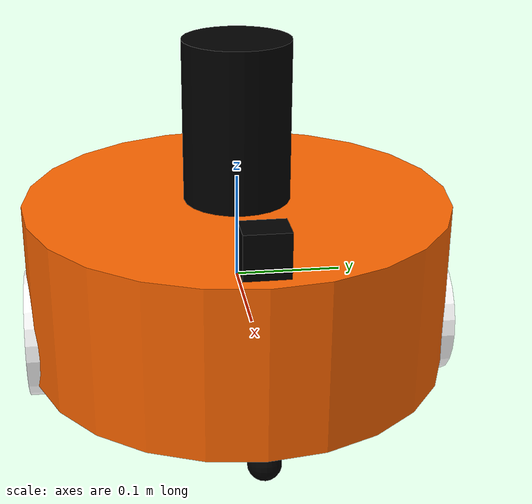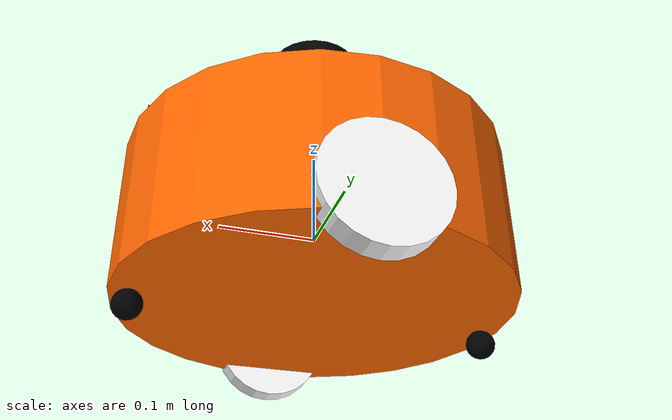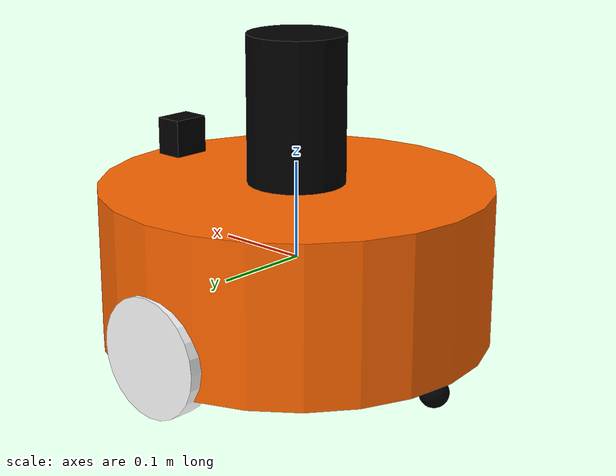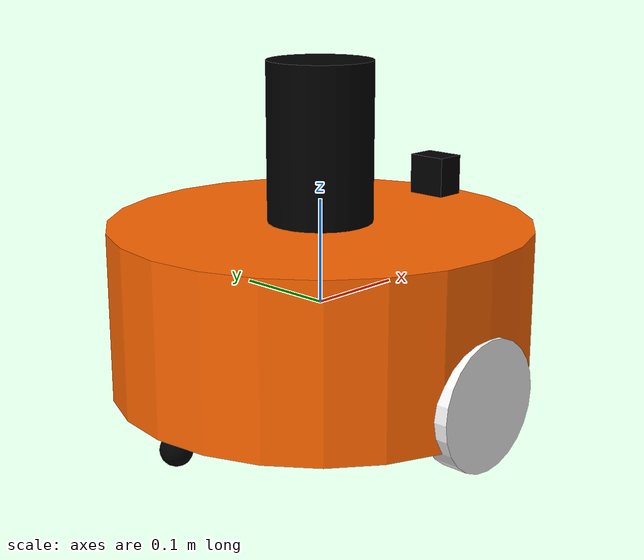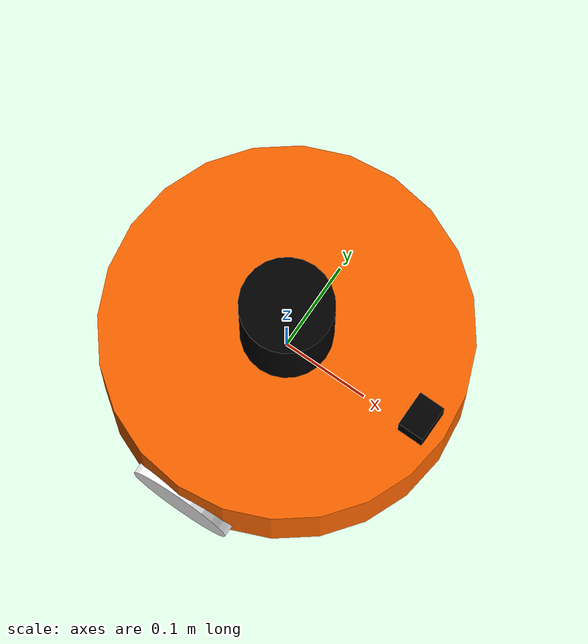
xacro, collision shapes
<?xml version="1.0"?>
<robot name="saibot" xmlns:xacro="http://www.ros.org/wiki/xacro">

    <xacro:property name="M_PI" value="3.14" />

    <!-- 底座的半径和高度 -->
    <xacro:property name="base_link_mass" value="20" />
    <xacro:property name="base_link_radius" value="0.20" />
    <xacro:property name="base_link_length" value="0.16" />

    <!-- 轮子的半径、高度、z轴、y轴 -->
    <xacro:property name="wheel_mass" value="20" />
    <xacro:property name="wheel_radius" value="0.06" />
    <xacro:property name="wheel_length" value="0.025" />
    <xacro:property name="wheel_z" value="-0.05" />
    <xacro:property name="wheel_y" value="0.19" />

    <!-- 支撑轮的半径、x轴 -->
    <xacro:property name="caster_mass" value="0.1" />
    <xacro:property name="caster_radius" value="0.015" />
    <xacro:property name="caster_x" value="0.18" />

    <!-- 摄像头的的长、宽、高、x轴 -->
    <xacro:property name="camera_mass" value="0.1" />
    <xacro:property name="camera_x" value="0.17" />
    <xacro:property name="camera_length" value="0.03" />
    <xacro:property name="camera_width" value="0.04" />
    <xacro:property name="camera_high" value="0.04" />

    <!-- 激光雷达头的的半径和高度 -->
    <xacro:property name="laser_mass" value="0.1" />
    <xacro:property name="laser_radius" value="0.05" />
    <xacro:property name="laser_length" value="0.15" />

    <!-- 球形的惯性矩阵 -->
    <xacro:macro name="sphere_inertial_matrix" params="m r">
        <inertial>
            <mass value="${m}"/>
            <inertia ixx="${2 * m * r * r / 5}" ixy="0.0" ixz="0.0" iyy="${2 * m * r * r / 5}" iyz="0.0" izz="${2 * m * r * r / 5}"/>
        </inertial>
    </xacro:macro>
    <!-- 圆柱的惯性矩阵 -->
    <xacro:macro name="cylinder_inertial_matrix" params="m r h">
        <inertial>
            <mass value="${m}"/>
            <inertia ixx="${m * (3 * r * r + h * h) / 12}" ixy="0.0" ixz="0.0" iyy="${m * (3 * r * r + h * h) / 12}" iyz="0.0" izz="${m * r * r / 2}"/>
        </inertial>
    </xacro:macro>
    <!-- 立方体的惯性矩阵 -->
    <xacro:macro name="box_inertial_matrix" params="m">
        <inertial>
            <mass value="${m}"/>
            <inertia ixx="${m}" ixy="0.0" ixz="0.0" iyy="${m}" iyz="0.0" izz="${m}"/>
        </inertial>
    </xacro:macro>

    <material name="yellow">
        <color rgba="1.0 0.4 0.0 1.0"/>
    </material>
    <material name="white">
        <color rgba="1.0 1.0 1.0 1.0"/>
    </material>
    <material name="black">
        <color rgba="0.0 0.0 0.0 1.0"/>
    </material>

    <link name="base_link">
        <visual>
            <!-- Set the position of the link and the rotation parameters of each axis -->
            <origin xyz="0.0 0.0 0.0" rpy="0.0 0.0 0.0"/>
            <!-- Set the shape parameters of the link -->
            <geometry>
                <cylinder radius="${base_link_radius}" length="${base_link_length}"/>
            </geometry>
            <!-- Set the color parameters of the link -->
            <material name="yellow" />
        </visual>
        <collision>
            <!-- Set the position of the collision and the rotation parameters of each axis -->
            <origin xyz="0.0 0.0 0.0" rpy="0.0 0.0 0.0"/>
            <!-- Set the shape parameters of the collision -->
            <geometry>
                <cylinder radius="${base_link_radius}" length="${base_link_length}"/>
            </geometry>
        </collision>
        <cylinder_inertial_matrix m="${base_link_mass}" r="${base_link_radius}" h="${base_link_length}" />
    </link>
    <!-- add gazebo material -->
    <gazebo reference="base_link">
        <material>Gazebo/Orange</material>
    </gazebo>

    <!-- Create a joint of type that rotates infinitely around a single axis -->
    <joint name="left_wheel_joint" type="continuous">
        <origin xyz="0.0 ${wheel_y} ${wheel_z}" rpy="0.0 0.0 0.0"/>
        <parent link="base_link"/>
        <child link="left_wheel_link"/>
        <!-- Set to rotate around the y axis -->
        <axis xyz="0.0 1.0 0.0"/>
    </joint>
    <link name="left_wheel_link">
        <visual>
            <origin xyz="0.0 0.0 0.0" rpy="${M_PI / 2} 0.0 0.0"/>
            <geometry>
                <cylinder radius="${wheel_radius}" length="${wheel_length}"/>
            </geometry>
            <material name="white" />
        </visual>
        <collision>
            <origin xyz="0.0 0.0 0.0" rpy="${M_PI / 2} 0.0 0.0"/>
            <geometry>
                <cylinder radius="${wheel_radius}" length="${wheel_length}"/>
            </geometry>
        </collision>
        <cylinder_inertial_matrix m="${wheel_mass}" r="${wheel_radius}" h="${wheel_length}" />
    </link>
    <gazebo reference="left_wheel_link">
        <material>Gazebo/White</material>
    </gazebo>
    <!-- add gazebo controller -->
    <transmission name="left_wheel_joint_tran">
        <type>transmission_interface/SimpleTransmission</type>
        <!-- Link join the join and controller -->
        <joint name="left_wheel_joint">
            <!-- Set Join controller interface -->
            <hardwareInterface>hardware_interface/VelocityJointInterface</hardwareInterface>
        </joint>
        <!-- Set join to motor -->
        <actuator name="left_wheel_joint_motor">
            <hardwareInterface>hardware_interface/VelocityJointInterface</hardwareInterface>
            <!-- Set the reduction ratio -->
            <mechanicalReduction>1</mechanicalReduction>
        </actuator>
    </transmission>

    <joint name="right_wheel_joint" type="continuous">
        <origin xyz="0.0 -${wheel_y} ${wheel_z}" rpy="0.0 0.0 0.0"/>
        <parent link="base_link"/>
        <child link="right_wheel_link"/>
        <axis xyz="0.0 1.0 0.0"/>
    </joint>
    <link name="right_wheel_link">
        <visual>
            <origin xyz="0.0 0.0 0.0" rpy="${M_PI / 2} 0.0 0.0"/>
            <geometry>
                <cylinder radius="${wheel_radius}" length="${wheel_length}"/>
            </geometry>
            <material name="white" />
        </visual>
        <collision>
            <origin xyz="0.0 0.0 0.0" rpy="${M_PI / 2} 0.0 0.0"/>
            <geometry>
                <cylinder radius="${wheel_radius}" length="${wheel_length}"/>
            </geometry>
        </collision>
        <cylinder_inertial_matrix m="${wheel_mass}" r="${wheel_radius}" h="${wheel_length}" />
    </link>
    <gazebo reference="right_wheel_link">
        <material>Gazebo/White</material>
    </gazebo>
    <transmission name="right_wheel_joint_tran">
        <type>transmission_interface/SimpleTransmission</type>
        <joint name="right_wheel_joint">
            <hardwareInterface>hardware_interface/VelocityJointInterface</hardwareInterface>
        </joint>
        <actuator name="right_wheel_joint_motor">
            <hardwareInterface>hardware_interface/VelocityJointInterface</hardwareInterface>
            <mechanicalReduction>1</mechanicalReduction>
        </actuator>
    </transmission>

    <joint name="front_caster_joint" type="continuous">
        <origin xyz="${caster_x} 0.0 -${base_link_length / 2 + caster_radius}" rpy="0.0 0.0 0.0"/>
        <parent link="base_link"/>
        <child link="front_caster_link"/>
        <axis xyz="0.0 1.0 0.0"/>
    </joint>
    <link name="front_caster_link">
        <visual>
            <origin xyz="0.0 0.0 0.0" rpy="${M_PI / 2} 0.0 0.0"/>
            <geometry>
                <sphere radius="${caster_radius}"/>
            </geometry>
            <material name="black" />
        </visual>
        <collision>
            <origin xyz="0.0 0.0 0.0" rpy="${M_PI / 2} 0.0 0.0"/>
            <geometry>
                <sphere radius="${caster_radius}"/>
            </geometry>
        </collision>
        <sphere_inertial_matrix m="${caster_mass}" r="${caster_radius}" />
    </link>
    <gazebo reference="front_caster_link">
        <material>Gazebo/Black</material>
    </gazebo>

    <joint name="back_caster_joint" type="continuous">
        <origin xyz="-${caster_x} 0.0 -${base_link_length / 2 + caster_radius}" rpy="0.0 0.0 0.0"/>
        <parent link="base_link"/>
        <child link="back_caster_link"/>
        <axis xyz="0.0 1.0 0.0"/>
    </joint>
    <link name="back_caster_link">
        <visual>
            <origin xyz="0.0 0.0 0.0" rpy="${M_PI / 2} 0.0 0.0"/>
            <geometry>
                <sphere radius="${caster_radius}"/>
            </geometry>
            <material name="black" />
        </visual>
        <collision>
            <origin xyz="0.0 0.0 0.0" rpy="${M_PI / 2} 0.0 0.0"/>
            <geometry>
                <sphere radius="${caster_radius}"/>
            </geometry>
        </collision>
        <sphere_inertial_matrix m="${caster_mass}" r="${caster_radius}" />
    </link>
    <gazebo reference="back_caster_link">
        <material>Gazebo/Black</material>
    </gazebo>

    <!-- Create a joint of type fixed joint -->
    <joint name="camera_joint" type="fixed">
        <origin xyz="${camera_x} 0.0 ${base_link_length / 2 + camera_high / 2}" rpy="0.0 0.0 0.0"/>
        <parent link="base_link"/>
        <child link="camera_link"/>
    </joint>
    <link name="camera_link">
        <visual>
            <origin xyz="0.0 0.0 0.0" rpy="0.0 0.0 0.0"/>
            <geometry>
                <box size="${camera_length} ${camera_width} ${camera_high}"/>
            </geometry>
            <material name="black" />
        </visual>
        <collision>
            <origin xyz="0.0 0.0 0.0" rpy="0.0 0.0 0.0"/>
            <geometry>
                <box size="${camera_length} ${camera_width} ${camera_high}"/>
            </geometry>
        </collision>
        <box_inertial_matrix m="${camera_mass}" />
    </link>
    <gazebo reference="camera_link">
        <material>Gazebo/Black</material>
    </gazebo>

    <joint name="laser_joint" type="fixed">
        <origin xyz="0.0 0.0 ${base_link_length / 2 + laser_length / 2}" rpy="0.0 0.0 0.0"/>
        <parent link="base_link"/>
        <child link="laser_link"/>
    </joint>
    <link name="laser_link">
        <visual>
            <origin xyz="0.0 0.0 0.0" rpy="0.0 0.0 0.0"/>
            <geometry>
                <cylinder radius="${laser_radius}" length="${laser_length}"/>
            </geometry>
            <material name="black" />
        </visual>
        <collision>
            <origin xyz="0.0 0.0 0.0" rpy="0.0 0.0 0.0"/>
            <geometry>
                <cylinder radius="${laser_radius}" length="${laser_length}"/>
            </geometry>
        </collision>
        <cylinder_inertial_matrix m="${laser_mass}" r="${laser_radius}" h="${laser_length}" />
    </link>
    <gazebo reference="laser_link">
        <material>Gazebo/Black</material>
    </gazebo>

    <joint name="kinect_joint" type="fixed">
        <origin xyz="-${camera_x} 0.0 0.115" rpy="0.0 0.0 -${M_PI}"/>
        <parent link="base_link"/>
        <child link="kinect_link"/>
    </joint>
    <link name="kinect_link">
        <visual>
            <origin xyz="0.0 0.0 0.0" rpy="0.0 0.0 ${M_PI / 2}"/>
            <geometry>
                <!-- Load texture description file -->
                <mesh filename="package://lesson7_urdf/meshes/kinect.dae" />
            </geometry>
        </visual>
    </link>

    <!-- add Gazebo controller -->
    <gazebo>
        <plugin name="differential_drive_controller"
                filename="libgazebo_ros_diff_drive.so">
            <rosDebugLevel>Debug</rosDebugLevel>
            <publishWheelTF>true</publishWheelTF>
            <robotNamespace>/</robotNamespace>
            <publishTf>1</publishTf>
            <publishWheelJointState>true</publishWheelJointState>
            <alwaysOn>true</alwaysOn>
            <updateRate>100.0</updateRate>
            <legacyMode>true</legacyMode>
            <leftJoint>left_wheel_joint</leftJoint>
            <rightJoint>right_wheel_joint</rightJoint>
            <wheelSeparation>${2 * wheel_y}</wheelSeparation>
            <wheelDiameter>${2 * wheel_radius}</wheelDiameter>
            <broadcastTF>1</broadcastTF>
            <wheelTorque>30</wheelTorque>
            <wheelAcceleration>1.8</wheelAcceleration>
            <commandTopic>cmd_vel</commandTopic>
            <odometryFrame>odom</odometryFrame>
            <odometryTopic>odom</odometryTopic>
            <robotBaseFrame>base_link</robotBaseFrame>
        </plugin>
    </gazebo>

    <!-- add Gazebo Camera -->
    <gazebo reference="camera_link">
        <sensor type="camera" name="camera_node">
            <update_rate>30</update_rate>
            <camera name="head_camera">
                <horizontal_fov>1.57</horizontal_fov>
                <image>
                    <width>1280</width>
                    <height>720</height>
                    <format>R8G8B8</format>
                </image>
                <clip>
                    <near>0.2</near>
                    <far>300</far>
                </clip>
                <noise>
                    <type>gaussian</type>
                    <mean>0.0</mean>
                    <stddev>0.007</stddev>
                </noise>
            </camera>
            <plugin name="gazebo_camera" filename="libgazebo_ros_camera.so">
                <alwaysOn>true</alwaysOn>
                <updateRate>0.0</updateRate>
                <cameraName>/camera</cameraName>
                <imageTopicName>image_raw</imageTopicName>
                <cameraInfoTopicName>image_info</cameraInfoTopicName>
                <frameName>camera_link</frameName>
                <hackBaseLine>0.07</hackBaseLine>
                <distortionK1>0.0</distortionK1>
                <distortionK2>0.0</distortionK2>
                <distortionK3>0.0</distortionK3>
                <distortionT1>0.0</distortionT1>
                <distortionT2>0.0</distortionT2>
            </plugin>
        </sensor>
    </gazebo>

    <!-- add Gazebo Kinect -->
    <gazebo reference="kinect_link">
        <sensor type="depth" name="kinect_node">
            <alwaysOn>true</alwaysOn>
            <update_rate>20</update_rate>
            <camera>
                <horizontal_fov>1.57</horizontal_fov>
                <image>
                    <width>640</width>
                    <height>480</height>
                    <format>R8G8B8</format>
                </image>
                <clip>
                    <near>0.05</near>
                    <far>8</far>
                </clip>
            </camera>
            <plugin name="gazebo_kinect" filename="libgazebo_ros_openni_kinect.so">
                <alwaysOn>true</alwaysOn>
                <updateRate>10</updateRate>
                <cameraName>/kinect</cameraName>
                <imageTopicName>rgb/image_raw</imageTopicName>
                <cameraInfoTopicName>rgb/camera_info</cameraInfoTopicName>
                <depthImageTopicName>depth/image_raw</depthImageTopicName>
                <pointCloudTopicName>depth/points</pointCloudTopicName>
                <depthImageCameraInfoTopicName>depth/camera_info</depthImageCameraInfoTopicName>
                <frameName>kinect_link</frameName>
                <baseline>0.1</baseline>
                <distortionK1>0.0</distortionK1>
                <distortionK2>0.0</distortionK2>
                <distortionK3>0.0</distortionK3>
                <distortionT1>0.0</distortionT1>
                <distortionT2>0.0</distortionT2>
                <pointCloudCutoff>0.4</pointCloudCutoff>
            </plugin>
        </sensor>
    </gazebo>

    <!-- add Gazebo Laser -->
    <gazebo reference="laser_link">
        <sensor type="ray" name="laser_node">
            <pose>0 0 0 0 0 0</pose>
            <visualize>false</visualize>
            <update_rate>5.5</update_rate>
            <ray>
                <scan>
                    <horizontal>
                        <samples>360</samples>
                        <resolution>1</resolution>
                        <min_angle>-3</min_angle>
                        <max_angle>3</max_angle>
                    </horizontal>
                </scan>
                <range>
                    <min>0.10</min>
                    <max>6.0</max>
                    <resolution>0.01</resolution>
                </range>
                <noise>
                    <type>gaussian</type>
                    <mean>0.0</mean>
                    <stddev>0.007</stddev>
                </noise>
            </ray>
            <plugin name="gazebo_rplidar" filename="libgazebo_ros_laser.so">
                <topicName>/scan</topicName>
                <frameName>laser_link</frameName>
            </plugin>
        </sensor>
    </gazebo>
</robot>
